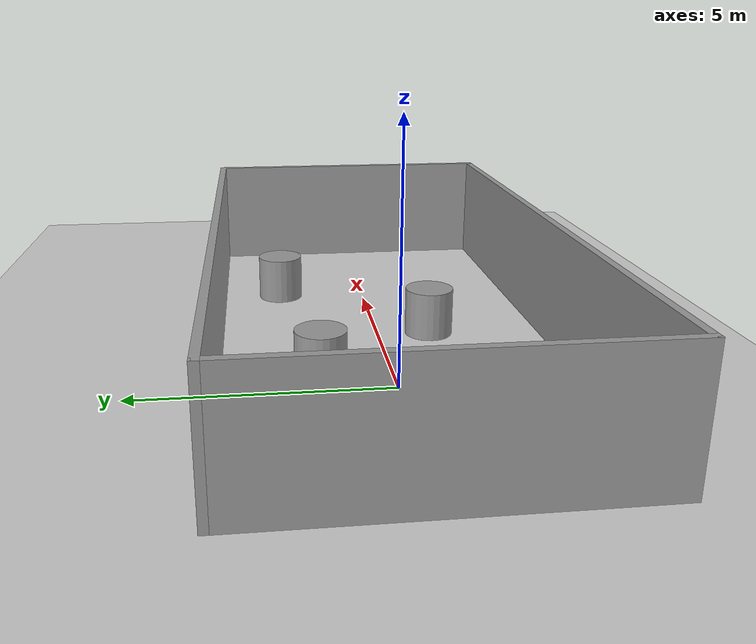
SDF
<sdf version="1.7">
 <world name="default">
  <light name="sun" type="directional">
   <pose>0 0 10 0 -0 0</pose>
   <diffuse>0.8 0.8 0.8 1</diffuse>
   <specular>0.2 0.2 0.2 1</specular>
   <attenuation>
    <range>1000</range>
    <constant>0.9</constant>
    <linear>0.01</linear>
    <quadratic>0.001</quadratic>
   </attenuation>
   <direction>-0.5 0.1 -0.9</direction>
   <spot><inner_angle>0</inner_angle><outer_angle>0</outer_angle><falloff>0</falloff></spot>
  </light>
  <model name="ground_plane">
   <static>1</static>
   <link name="link">
    <collision name="collision">
     <geometry><plane><normal>0 0 1</normal><size>100 100</size></plane></geometry>
     <surface>
      <contact><collide_bitmask>65535</collide_bitmask></contact>
      <friction><ode><mu>100</mu><mu2>50</mu2></ode></friction>
     </surface>
    </collision>
    <visual name="visual">
     <cast_shadows>0</cast_shadows>
     <geometry><plane><normal>0 0 1</normal><size>100 100</size></plane></geometry>
     <material>
      <script><uri>file://media/materials/scripts/gazebo.material</uri><name>Gazebo/Grey</name></script>
     </material>
    </visual>
   </link>
  </model>
  <gravity>0 0 -9.8</gravity>
  <magnetic_field>6e-06 2.3e-05 -4.2e-05</magnetic_field>
  <atmosphere type="adiabatic"/>
  <physics type="ode">
   <max_step_size>0.001</max_step_size>
   <real_time_factor>1</real_time_factor>
   <real_time_update_rate>1000</real_time_update_rate>
  </physics>
  <scene><ambient>0.4 0.4 0.4 1</ambient><background>0.7 0.7 0.7 1</background><shadows>1</shadows></scene>
  <spherical_coordinates>
   <surface_model>EARTH_WGS84</surface_model>
   <latitude_deg>0</latitude_deg>
   <longitude_deg>0</longitude_deg>
   <elevation>0</elevation>
   <heading_deg>0</heading_deg>
  </spherical_coordinates>
  <model name="test_scene">
   <pose>2.47173 -0.093937 0 0 -0 0</pose>
   <link name="Wall_0">
    <collision name="Wall_0_Collision">
     <geometry><box><size>13.25 0.15 2.5</size></box></geometry>
     <pose>0 0 1.25 0 -0 0</pose>
    </collision>
    <visual name="Wall_0_Visual">
     <pose>0 0 1.25 0 -0 0</pose>
     <geometry><box><size>13.25 0.15 2.5</size></box></geometry>
     <material>
      <script><uri>file://media/materials/scripts/gazebo.material</uri><name>Gazebo/Grey</name></script>
      <ambient>1 1 1 1</ambient>
     </material>
     <meta><layer>0</layer></meta>
    </visual>
    <pose>-0 -3.425 0 0 -0 0</pose>
   </link>
   <link name="Wall_1">
    <collision name="Wall_1_Collision">
     <geometry><box><size>7 0.15 2.5</size></box></geometry>
     <pose>0 0 1.25 0 -0 0</pose>
    </collision>
    <visual name="Wall_1_Visual">
     <pose>0 0 1.25 0 -0 0</pose>
     <geometry><box><size>7 0.15 2.5</size></box></geometry>
     <material>
      <script><uri>file://media/materials/scripts/gazebo.material</uri><name>Gazebo/Grey</name></script>
      <ambient>1 1 1 1</ambient>
     </material>
     <meta><layer>0</layer></meta>
    </visual>
    <pose>6.55 0 0 0 -0 1.5708</pose>
   </link>
   <link name="Wall_2">
    <collision name="Wall_2_Collision">
     <geometry><box><size>13.25 0.15 2.5</size></box></geometry>
     <pose>0 0 1.25 0 -0 0</pose>
    </collision>
    <visual name="Wall_2_Visual">
     <pose>0 0 1.25 0 -0 0</pose>
     <geometry><box><size>13.25 0.15 2.5</size></box></geometry>
     <material>
      <script><uri>file://media/materials/scripts/gazebo.material</uri><name>Gazebo/Grey</name></script>
      <ambient>1 1 1 1</ambient>
     </material>
     <meta><layer>0</layer></meta>
    </visual>
    <pose>-0 3.425 0 0 -0 3.14159</pose>
   </link>
   <link name="Wall_3">
    <collision name="Wall_3_Collision">
     <geometry><box><size>7 0.15 2.5</size></box></geometry>
     <pose>0 0 1.25 0 -0 0</pose>
    </collision>
    <visual name="Wall_3_Visual">
     <pose>0 0 1.25 0 -0 0</pose>
     <geometry><box><size>7 0.15 2.5</size></box></geometry>
     <material>
      <script><uri>file://media/materials/scripts/gazebo.material</uri><name>Gazebo/Grey</name></script>
      <ambient>1 1 1 1</ambient>
     </material>
     <meta><layer>0</layer></meta>
    </visual>
    <pose>-6.55 0 0 0 -0 -1.5708</pose>
   </link>
   <static>1</static>
  </model>
  <model name="unit_cylinder">
   <pose>5.40092 1.9533 0.499993 -3e-06 -3e-06 0</pose>
   <link name="link">
    <inertial>
     <mass>1</mass>
     <inertia><ixx>0.145833</ixx><ixy>0</ixy><ixz>0</ixz><iyy>0.145833</iyy><iyz>0</iyz><izz>0.125</izz></inertia>
    </inertial>
    <collision name="collision">
     <geometry><cylinder><radius>0.5</radius><length>1</length></cylinder></geometry>
    </collision>
    <visual name="visual">
     <geometry><cylinder><radius>0.5</radius><length>1</length></cylinder></geometry>
     <material>
      <script><name>Gazebo/Grey</name><uri>file://media/materials/scripts/gazebo.material</uri></script>
     </material>
    </visual>
   </link>
  </model>
  <model name="unit_cylinder_0">
   <pose>2.65387 -1.10127 0.499997 3e-06 4e-06 -0</pose>
   <link name="link">
    <inertial>
     <mass>1</mass>
     <inertia><ixx>0.145833</ixx><ixy>0</ixy><ixz>0</ixz><iyy>0.145833</iyy><iyz>0</iyz><izz>0.125</izz></inertia>
    </inertial>
    <collision name="collision">
     <geometry><cylinder><radius>0.5</radius><length>1</length></cylinder></geometry>
    </collision>
    <visual name="visual">
     <geometry><cylinder><radius>0.5</radius><length>1</length></cylinder></geometry>
     <material>
      <script><name>Gazebo/Grey</name><uri>file://media/materials/scripts/gazebo.material</uri></script>
     </material>
    </visual>
   </link>
  </model>
  <model name="unit_cylinder_1">
   <pose>0.524563 1.38404 0.499993 -3e-06 -4e-06 -0</pose>
   <link name="link">
    <inertial>
     <mass>1</mass>
     <inertia><ixx>0.145833</ixx><ixy>0</ixy><ixz>0</ixz><iyy>0.145833</iyy><iyz>0</iyz><izz>0.125</izz></inertia>
    </inertial>
    <collision name="collision">
     <geometry><cylinder><radius>0.5</radius><length>1</length></cylinder></geometry>
    </collision>
    <visual name="visual">
     <geometry><cylinder><radius>0.5</radius><length>1</length></cylinder></geometry>
     <material>
      <script><name>Gazebo/Grey</name><uri>file://media/materials/scripts/gazebo.material</uri></script>
     </material>
    </visual>
   </link>
  </model>
  <model name="unit_cylinder_2">
   <pose>-1.82622 -1.66018 0.499997 3e-06 4e-06 -0</pose>
   <link name="link">
    <inertial>
     <mass>1</mass>
     <inertia><ixx>0.145833</ixx><ixy>0</ixy><ixz>0</ixz><iyy>0.145833</iyy><iyz>0</iyz><izz>0.125</izz></inertia>
    </inertial>
    <collision name="collision">
     <geometry><cylinder><radius>0.5</radius><length>1</length></cylinder></geometry>
    </collision>
    <visual name="visual">
     <geometry><cylinder><radius>0.5</radius><length>1</length></cylinder></geometry>
     <material>
      <script><name>Gazebo/Grey</name><uri>file://media/materials/scripts/gazebo.material</uri></script>
     </material>
    </visual>
   </link>
  </model>
 </world>
</sdf>
